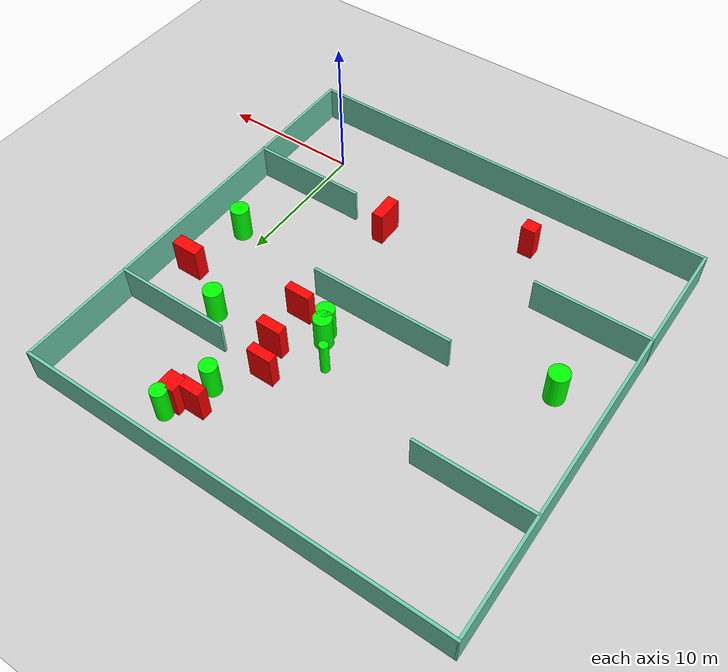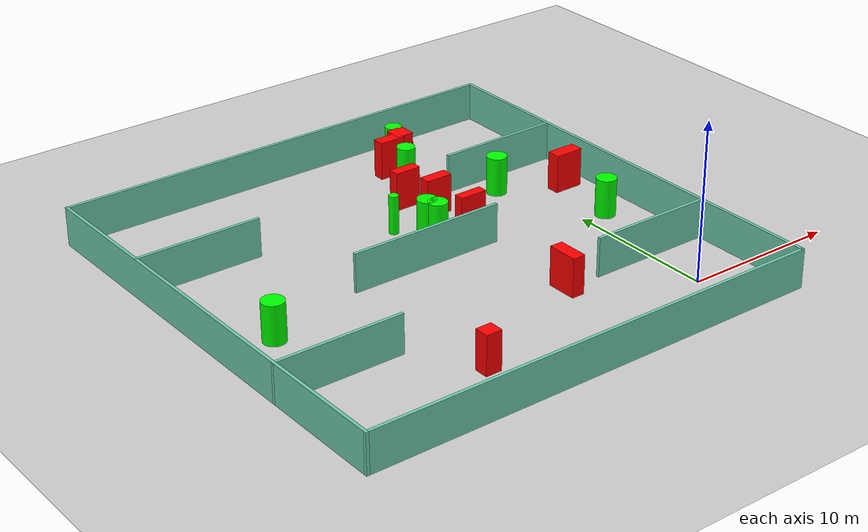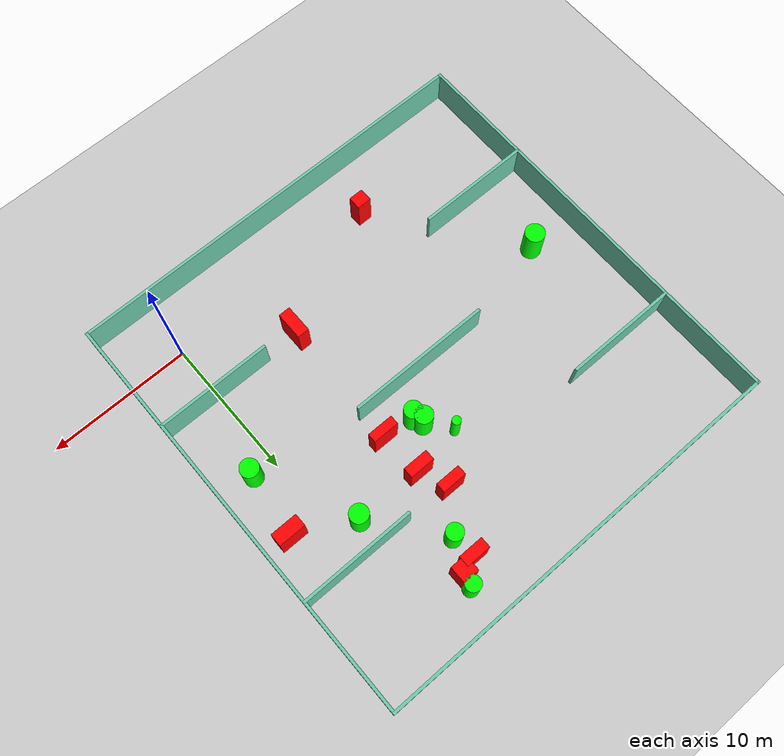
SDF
<sdf version="1.7">
 <world name="default">
  <light name="sun" type="directional">
   <pose>0 0 10 0 -0 0</pose>
   <diffuse>0.8 0.8 0.8 1</diffuse>
   <specular>0.2 0.2 0.2 1</specular>
   <attenuation>
    <range>1000</range>
    <constant>0.9</constant>
    <linear>0.01</linear>
    <quadratic>0.001</quadratic>
   </attenuation>
   <direction>-0.5 0.1 -0.9</direction>
   <spot><inner_angle>0</inner_angle><outer_angle>0</outer_angle><falloff>0</falloff></spot>
  </light>
  <model name="ground_plane">
   <static>1</static>
   <link name="link">
    <collision name="collision">
     <geometry><plane><normal>0 0 1</normal><size>100 100</size></plane></geometry>
     <surface>
      <contact><collide_bitmask>65535</collide_bitmask></contact>
      <friction><ode><mu>100</mu><mu2>50</mu2></ode></friction>
     </surface>
    </collision>
    <visual name="visual">
     <cast_shadows>0</cast_shadows>
     <geometry><plane><normal>0 0 1</normal><size>100 100</size></plane></geometry>
     <material>
      <script><uri>file://media/materials/scripts/gazebo.material</uri><name>Gazebo/Grey</name></script>
     </material>
    </visual>
   </link>
  </model>
  <gravity>0 0 -9.8</gravity>
  <magnetic_field>6e-06 2.3e-05 -4.2e-05</magnetic_field>
  <atmosphere type="adiabatic"/>
  <physics type="ode">
   <max_step_size>0.001</max_step_size>
   <real_time_factor>1</real_time_factor>
   <real_time_update_rate>1000</real_time_update_rate>
  </physics>
  <scene><ambient>0.4 0.4 0.4 1</ambient><background>0.7 0.7 0.7 1</background><shadows>1</shadows></scene>
  <spherical_coordinates>
   <surface_model>EARTH_WGS84</surface_model>
   <latitude_deg>0</latitude_deg>
   <longitude_deg>0</longitude_deg>
   <elevation>0</elevation>
   <heading_deg>0</heading_deg>
  </spherical_coordinates>
  <model name="my_base_walls">
   <link name="Wall_10">
    <collision name="Wall_10_Collision">
     <geometry><box><size>8.2 0.2 2.5</size></box></geometry>
     <pose>0 0 1.25 0 -0 0</pose>
    </collision>
    <visual name="Wall_10_Visual">
     <pose>0 0 1.25 0 -0 0</pose>
     <geometry><box><size>8.2 0.2 2.5</size></box></geometry>
     <material>
      <script><uri>file://media/materials/scripts/gazebo.material</uri><name>Gazebo/Grey</name></script>
      <ambient>0.435294 0.796078 0.67451 1</ambient>
     </material>
     <meta><layer>0</layer></meta>
    </visual>
    <pose>-11 -7 0 0 -0 0</pose>
   </link>
   <link name="Wall_12">
    <collision name="Wall_12_Collision">
     <geometry><box><size>8.2 0.2 2.5</size></box></geometry>
     <pose>0 0 1.25 0 -0 0</pose>
    </collision>
    <visual name="Wall_12_Visual">
     <pose>0 0 1.25 0 -0 0</pose>
     <geometry><box><size>8.2 0.2 2.5</size></box></geometry>
     <material>
      <script><uri>file://media/materials/scripts/gazebo.material</uri><name>Gazebo/Grey</name></script>
      <ambient>0.435294 0.796078 0.67451 1</ambient>
     </material>
     <meta><layer>0</layer></meta>
    </visual>
    <pose>-11 7 0 0 -0 0</pose>
   </link>
   <link name="Wall_14">
    <collision name="Wall_14_Collision">
     <geometry><box><size>8.2 0.2 2.5</size></box></geometry>
     <pose>0 0 1.25 0 -0 0</pose>
    </collision>
    <visual name="Wall_14_Visual">
     <pose>0 0 1.25 0 -0 0</pose>
     <geometry><box><size>8.2 0.2 2.5</size></box></geometry>
     <material>
      <script><uri>file://media/materials/scripts/gazebo.material</uri><name>Gazebo/Grey</name></script>
      <ambient>0.435294 0.796078 0.67451 1</ambient>
     </material>
     <meta><layer>0</layer></meta>
    </visual>
    <pose>11 7 0 0 -0 3.14159</pose>
   </link>
   <link name="Wall_16">
    <collision name="Wall_16_Collision">
     <geometry><box><size>10.2 0.2 2.5</size></box></geometry>
     <pose>0 0 1.25 0 -0 0</pose>
    </collision>
    <visual name="Wall_16_Visual">
     <pose>0 0 1.25 0 -0 0</pose>
     <geometry><box><size>10.2 0.2 2.5</size></box></geometry>
     <material>
      <script><uri>file://media/materials/scripts/gazebo.material</uri><name>Gazebo/Grey</name></script>
      <ambient>0.435294 0.796078 0.67451 1</ambient>
     </material>
     <meta><layer>0</layer></meta>
    </visual>
    <pose>0 0 0 0 -0 3.14159</pose>
   </link>
   <link name="Wall_2">
    <collision name="Wall_2_Collision">
     <geometry><box><size>30.2 0.2 2.5</size></box></geometry>
     <pose>0 0 1.25 0 -0 0</pose>
    </collision>
    <visual name="Wall_2_Visual">
     <pose>0 0 1.25 0 -0 0</pose>
     <geometry><box><size>30.2 0.2 2.5</size></box></geometry>
     <material>
      <script><uri>file://media/materials/scripts/gazebo.material</uri><name>Gazebo/Grey</name></script>
      <ambient>0.435294 0.796078 0.67451 1</ambient>
     </material>
     <meta><layer>0</layer></meta>
    </visual>
    <pose>0 -15 0 0 -0 3.14159</pose>
   </link>
   <link name="Wall_3">
    <collision name="Wall_3_Collision">
     <geometry><box><size>30.2 0.2 2.5</size></box></geometry>
     <pose>0 0 1.25 0 -0 0</pose>
    </collision>
    <visual name="Wall_3_Visual">
     <pose>0 0 1.25 0 -0 0</pose>
     <geometry><box><size>30.2 0.2 2.5</size></box></geometry>
     <material>
      <script><uri>file://media/materials/scripts/gazebo.material</uri><name>Gazebo/Grey</name></script>
      <ambient>0.435294 0.796078 0.67451 1</ambient>
     </material>
     <meta><layer>0</layer></meta>
    </visual>
    <pose>-15 0 0 0 -0 1.5708</pose>
   </link>
   <link name="Wall_4">
    <collision name="Wall_4_Collision">
     <geometry><box><size>30.2 0.2 2.5</size></box></geometry>
     <pose>0 0 1.25 0 -0 0</pose>
    </collision>
    <visual name="Wall_4_Visual">
     <pose>0 0 1.25 0 -0 0</pose>
     <geometry><box><size>30.2 0.2 2.5</size></box></geometry>
     <material>
      <script><uri>file://media/materials/scripts/gazebo.material</uri><name>Gazebo/Grey</name></script>
      <ambient>0.435294 0.796078 0.67451 1</ambient>
     </material>
     <meta><layer>0</layer></meta>
    </visual>
    <pose>0 15 0 0 -0 0</pose>
   </link>
   <link name="Wall_6">
    <collision name="Wall_6_Collision">
     <geometry><box><size>30.2 0.2 2.5</size></box></geometry>
     <pose>0 0 1.25 0 -0 0</pose>
    </collision>
    <visual name="Wall_6_Visual">
     <pose>0 0 1.25 0 -0 0</pose>
     <geometry><box><size>30.2 0.2 2.5</size></box></geometry>
     <material>
      <script><uri>file://media/materials/scripts/gazebo.material</uri><name>Gazebo/Grey</name></script>
      <ambient>0.435294 0.796078 0.67451 1</ambient>
     </material>
     <meta><layer>0</layer></meta>
    </visual>
    <pose>15 0 0 0 -0 1.5708</pose>
   </link>
   <link name="Wall_8">
    <collision name="Wall_8_Collision">
     <geometry><box><size>8.2 0.2 2.5</size></box></geometry>
     <pose>0 0 1.25 0 -0 0</pose>
    </collision>
    <visual name="Wall_8_Visual">
     <pose>0 0 1.25 0 -0 0</pose>
     <geometry><box><size>8.2 0.2 2.5</size></box></geometry>
     <material>
      <script><uri>file://media/materials/scripts/gazebo.material</uri><name>Gazebo/Grey</name></script>
      <ambient>0.435294 0.796078 0.67451 1</ambient>
     </material>
     <meta><layer>0</layer></meta>
    </visual>
    <pose>11 -7 0 0 -0 3.14159</pose>
   </link>
   <static>1</static>
   <pose>-11 11 0 0 -0 0</pose>
  </model>
  <model name="cylinder1">
   <static>1</static>
   <link name="link">
    <inertial>
     <mass>1</mass>
     <inertia><ixx>0.5</ixx><ixy>0</ixy><ixz>0</ixz><iyy>0.5</iyy><iyz>0</iyz><izz>1</izz></inertia>
    </inertial>
    <collision name="collision">
     <geometry><cylinder><radius>0.6489711197368259</radius><length>2.5</length></cylinder></geometry>
    </collision>
    <visual name="visual">
     <geometry><cylinder><radius>0.6489711197368259</radius><length>2.5</length></cylinder></geometry>
     <material>
      <ambient>0 1 0 1</ambient>
      <diffuse>0 1 0 1</diffuse>
      <specular>0.1 0.1 0.1 1</specular>
      <emissive>0 0 0 0</emissive>
     </material>
    </visual>
   </link>
   <pose>-1.7226446613964796 16.098553953733177 1.25 0 0 0</pose>
  </model>
  <model name="cylinder2">
   <static>1</static>
   <link name="link">
    <inertial>
     <mass>1</mass>
     <inertia><ixx>0.5</ixx><ixy>0</ixy><ixz>0</ixz><iyy>0.5</iyy><iyz>0</iyz><izz>1</izz></inertia>
    </inertial>
    <collision name="collision">
     <geometry><cylinder><radius>0.6443500829585339</radius><length>2.5</length></cylinder></geometry>
    </collision>
    <visual name="visual">
     <geometry><cylinder><radius>0.6443500829585339</radius><length>2.5</length></cylinder></geometry>
     <material>
      <ambient>0 1 0 1</ambient>
      <diffuse>0 1 0 1</diffuse>
      <specular>0.1 0.1 0.1 1</specular>
      <emissive>0 0 0 0</emissive>
     </material>
    </visual>
   </link>
   <pose>1.537268805633751 9.623692821245816 1.25 0 0 0</pose>
  </model>
  <model name="cylinder3">
   <static>1</static>
   <link name="link">
    <inertial>
     <mass>1</mass>
     <inertia><ixx>0.5</ixx><ixy>0</ixy><ixz>0</ixz><iyy>0.5</iyy><iyz>0</iyz><izz>1</izz></inertia>
    </inertial>
    <collision name="collision">
     <geometry><cylinder><radius>0.3075815710560919</radius><length>2.5</length></cylinder></geometry>
    </collision>
    <visual name="visual">
     <geometry><cylinder><radius>0.3075815710560919</radius><length>2.5</length></cylinder></geometry>
     <material>
      <ambient>0 1 0 1</ambient>
      <diffuse>0 1 0 1</diffuse>
      <specular>0.1 0.1 0.1 1</specular>
      <emissive>0 0 0 0</emissive>
     </material>
    </visual>
   </link>
   <pose>-10.02440632126258 15.574400446020704 1.25 0 0 0</pose>
  </model>
  <model name="cylinder4">
   <static>1</static>
   <link name="link">
    <inertial>
     <mass>1</mass>
     <inertia><ixx>0.5</ixx><ixy>0</ixy><ixz>0</ixz><iyy>0.5</iyy><iyz>0</iyz><izz>1</izz></inertia>
    </inertial>
    <collision name="collision">
     <geometry><cylinder><radius>0.6222182325849965</radius><length>2.5</length></cylinder></geometry>
    </collision>
    <visual name="visual">
     <geometry><cylinder><radius>0.6222182325849965</radius><length>2.5</length></cylinder></geometry>
     <material>
      <ambient>0 1 0 1</ambient>
      <diffuse>0 1 0 1</diffuse>
      <specular>0.1 0.1 0.1 1</specular>
      <emissive>0 0 0 0</emissive>
     </material>
    </visual>
   </link>
   <pose>-8.45764891836646 13.307279878803563 1.25 0 0 0</pose>
  </model>
  <model name="cylinder5">
   <static>1</static>
   <link name="link">
    <inertial>
     <mass>1</mass>
     <inertia><ixx>0.5</ixx><ixy>0</ixy><ixz>0</ixz><iyy>0.5</iyy><iyz>0</iyz><izz>1</izz></inertia>
    </inertial>
    <collision name="collision">
     <geometry><cylinder><radius>0.539252318627569</radius><length>2.5</length></cylinder></geometry>
    </collision>
    <visual name="visual">
     <geometry><cylinder><radius>0.539252318627569</radius><length>2.5</length></cylinder></geometry>
     <material>
      <ambient>0 1 0 1</ambient>
      <diffuse>0 1 0 1</diffuse>
      <specular>0.1 0.1 0.1 1</specular>
      <emissive>0 0 0 0</emissive>
     </material>
    </visual>
   </link>
   <pose>-4.147498891811232 23.599449363120723 1.25 0 0 0</pose>
  </model>
  <model name="cylinder6">
   <static>1</static>
   <link name="link">
    <inertial>
     <mass>1</mass>
     <inertia><ixx>0.5</ixx><ixy>0</ixy><ixz>0</ixz><iyy>0.5</iyy><iyz>0</iyz><izz>1</izz></inertia>
    </inertial>
    <collision name="collision">
     <geometry><cylinder><radius>0.6305014324277607</radius><length>2.5</length></cylinder></geometry>
    </collision>
    <visual name="visual">
     <geometry><cylinder><radius>0.6305014324277607</radius><length>2.5</length></cylinder></geometry>
     <material>
      <ambient>0 1 0 1</ambient>
      <diffuse>0 1 0 1</diffuse>
      <specular>0.1 0.1 0.1 1</specular>
      <emissive>0 0 0 0</emissive>
     </material>
    </visual>
   </link>
   <pose>-8.739907503843686 13.981914442824994 1.25 0 0 0</pose>
  </model>
  <model name="cylinder7">
   <static>1</static>
   <link name="link">
    <inertial>
     <mass>1</mass>
     <inertia><ixx>0.5</ixx><ixy>0</ixy><ixz>0</ixz><iyy>0.5</iyy><iyz>0</iyz><izz>1</izz></inertia>
    </inertial>
    <collision name="collision">
     <geometry><cylinder><radius>0.6987369580463295</radius><length>2.5</length></cylinder></geometry>
    </collision>
    <visual name="visual">
     <geometry><cylinder><radius>0.6987369580463295</radius><length>2.5</length></cylinder></geometry>
     <material>
      <ambient>0 1 0 1</ambient>
      <diffuse>0 1 0 1</diffuse>
      <specular>0.1 0.1 0.1 1</specular>
      <emissive>0 0 0 0</emissive>
     </material>
    </visual>
   </link>
   <pose>-22.57320714487154 9.347769506946204 1.25 0 0 0</pose>
  </model>
  <model name="cylinder8">
   <static>1</static>
   <link name="link">
    <inertial>
     <mass>1</mass>
     <inertia><ixx>0.5</ixx><ixy>0</ixy><ixz>0</ixz><iyy>0.5</iyy><iyz>0</iyz><izz>1</izz></inertia>
    </inertial>
    <collision name="collision">
     <geometry><cylinder><radius>0.5846515692590317</radius><length>2.5</length></cylinder></geometry>
    </collision>
    <visual name="visual">
     <geometry><cylinder><radius>0.5846515692590317</radius><length>2.5</length></cylinder></geometry>
     <material>
      <ambient>0 1 0 1</ambient>
      <diffuse>0 1 0 1</diffuse>
      <specular>0.1 0.1 0.1 1</specular>
      <emissive>0 0 0 0</emissive>
     </material>
    </visual>
   </link>
   <pose>-5.35110259764998 20.644226272435205 1.25 0 0 0</pose>
  </model>
  <model name="box1">
   <static>1</static>
   <link name="link">
    <inertial>
     <mass>1</mass>
     <inertia><ixx>0.083</ixx><ixy>0</ixy><ixz>0</ixz><iyy>0.083</iyy><iyz>0</iyz><izz>0.083</izz></inertia>
    </inertial>
    <collision name="collision">
     <geometry><box><size>1.1608351382249409 1.1963488331527472 2.5</size></box></geometry>
    </collision>
    <visual name="visual">
     <geometry><box><size>1.1608351382249409 1.1963488331527472 2.5</size></box></geometry>
     <material>
      <ambient>1 0 0 1</ambient>
      <diffuse>1 0 0 1</diffuse>
      <specular>0.1 0.1 0.1 1</specular>
      <emissive>0 0 0 0</emissive>
     </material>
    </visual>
    <sensor name="my_contact" type="contact">
     <contact><collision>box_collision</collision><topic>__default_topic__</topic></contact>
    </sensor>
   </link>
   <pose>-4.342909551863681 22.642276802483167 1.25 0 0 0</pose>
  </model>
  <model name="box2">
   <static>1</static>
   <link name="link">
    <inertial>
     <mass>1</mass>
     <inertia><ixx>0.083</ixx><ixy>0</ixy><ixz>0</ixz><iyy>0.083</iyy><iyz>0</iyz><izz>0.083</izz></inertia>
    </inertial>
    <collision name="collision">
     <geometry><box><size>1.82949731080783 0.6353433553511655 2.5</size></box></geometry>
    </collision>
    <visual name="visual">
     <geometry><box><size>1.82949731080783 0.6353433553511655 2.5</size></box></geometry>
     <material>
      <ambient>1 0 0 1</ambient>
      <diffuse>1 0 0 1</diffuse>
      <specular>0.1 0.1 0.1 1</specular>
      <emissive>0 0 0 0</emissive>
     </material>
    </visual>
    <sensor name="my_contact" type="contact">
     <contact><collision>box_collision</collision><topic>__default_topic__</topic></contact>
    </sensor>
   </link>
   <pose>-6.2215027403506475 13.04157405124472 1.25 0 0 0</pose>
  </model>
  <model name="box3">
   <static>1</static>
   <link name="link">
    <inertial>
     <mass>1</mass>
     <inertia><ixx>0.083</ixx><ixy>0</ixy><ixz>0</ixz><iyy>0.083</iyy><iyz>0</iyz><izz>0.083</izz></inertia>
    </inertial>
    <collision name="collision">
     <geometry><box><size>1.0322281556280164 0.9356223155976534 2.5</size></box></geometry>
    </collision>
    <visual name="visual">
     <geometry><box><size>1.0322281556280164 0.9356223155976534 2.5</size></box></geometry>
     <material>
      <ambient>1 0 0 1</ambient>
      <diffuse>1 0 0 1</diffuse>
      <specular>0.1 0.1 0.1 1</specular>
      <emissive>0 0 0 0</emissive>
     </material>
    </visual>
    <sensor name="my_contact" type="contact">
     <contact><collision>box_collision</collision><topic>__default_topic__</topic></contact>
    </sensor>
   </link>
   <pose>-15.419777881080662 -0.12767806184987585 1.25 0 0 0</pose>
  </model>
  <model name="box4">
   <static>1</static>
   <link name="link">
    <inertial>
     <mass>1</mass>
     <inertia><ixx>0.083</ixx><ixy>0</ixy><ixz>0</ixz><iyy>0.083</iyy><iyz>0</iyz><izz>0.083</izz></inertia>
    </inertial>
    <collision name="collision">
     <geometry><box><size>1.757640170285743 0.7690283903098669 2.5</size></box></geometry>
    </collision>
    <visual name="visual">
     <geometry><box><size>1.757640170285743 0.7690283903098669 2.5</size></box></geometry>
     <material>
      <ambient>1 0 0 1</ambient>
      <diffuse>1 0 0 1</diffuse>
      <specular>0.1 0.1 0.1 1</specular>
      <emissive>0 0 0 0</emissive>
     </material>
    </visual>
    <sensor name="my_contact" type="contact">
     <contact><collision>box_collision</collision><topic>__default_topic__</topic></contact>
    </sensor>
   </link>
   <pose>-5.442480077931217 22.28591101146608 1.25 0 0 0</pose>
  </model>
  <model name="box5">
   <static>1</static>
   <link name="link">
    <inertial>
     <mass>1</mass>
     <inertia><ixx>0.083</ixx><ixy>0</ixy><ixz>0</ixz><iyy>0.083</iyy><iyz>0</iyz><izz>0.083</izz></inertia>
    </inertial>
    <collision name="collision">
     <geometry><box><size>1.7414705899364114 0.6946689074897312 2.5</size></box></geometry>
    </collision>
    <visual name="visual">
     <geometry><box><size>1.7414705899364114 0.6946689074897312 2.5</size></box></geometry>
     <material>
      <ambient>1 0 0 1</ambient>
      <diffuse>1 0 0 1</diffuse>
      <specular>0.1 0.1 0.1 1</specular>
      <emissive>0 0 0 0</emissive>
     </material>
    </visual>
    <sensor name="my_contact" type="contact">
     <contact><collision>box_collision</collision><topic>__default_topic__</topic></contact>
    </sensor>
   </link>
   <pose>-7.316517984494293 18.108107781666945 1.25 0 0 0</pose>
  </model>
  <model name="box6">
   <static>1</static>
   <link name="link">
    <inertial>
     <mass>1</mass>
     <inertia><ixx>0.083</ixx><ixy>0</ixy><ixz>0</ixz><iyy>0.083</iyy><iyz>0</iyz><izz>0.083</izz></inertia>
    </inertial>
    <collision name="collision">
     <geometry><box><size>0.8341428923282926 1.9820247186344817 2.5</size></box></geometry>
    </collision>
    <visual name="visual">
     <geometry><box><size>0.8341428923282926 1.9820247186344817 2.5</size></box></geometry>
     <material>
      <ambient>1 0 0 1</ambient>
      <diffuse>1 0 0 1</diffuse>
      <specular>0.1 0.1 0.1 1</specular>
      <emissive>0 0 0 0</emissive>
     </material>
    </visual>
    <sensor name="my_contact" type="contact">
     <contact><collision>box_collision</collision><topic>__default_topic__</topic></contact>
    </sensor>
   </link>
   <pose>-6.479930522266427 3.9436551545716227 1.25 0 0 0</pose>
  </model>
  <model name="box7">
   <static>1</static>
   <link name="link">
    <inertial>
     <mass>1</mass>
     <inertia><ixx>0.083</ixx><ixy>0</ixy><ixz>0</ixz><iyy>0.083</iyy><iyz>0</iyz><izz>0.083</izz></inertia>
    </inertial>
    <collision name="collision">
     <geometry><box><size>1.9067410919877514 0.8878850283408426 2.5</size></box></geometry>
    </collision>
    <visual name="visual">
     <geometry><box><size>1.9067410919877514 0.8878850283408426 2.5</size></box></geometry>
     <material>
      <ambient>1 0 0 1</ambient>
      <diffuse>1 0 0 1</diffuse>
      <specular>0.1 0.1 0.1 1</specular>
      <emissive>0 0 0 0</emissive>
     </material>
    </visual>
    <sensor name="my_contact" type="contact">
     <contact><collision>box_collision</collision><topic>__default_topic__</topic></contact>
    </sensor>
   </link>
   <pose>2.1074698834485837 14.10307261209342 1.25 0 0 0</pose>
  </model>
  <model name="box8">
   <static>1</static>
   <link name="link">
    <inertial>
     <mass>1</mass>
     <inertia><ixx>0.083</ixx><ixy>0</ixy><ixz>0</ixz><iyy>0.083</iyy><iyz>0</iyz><izz>0.083</izz></inertia>
    </inertial>
    <collision name="collision">
     <geometry><box><size>1.7767796300160879 0.7271827059378597 2.5</size></box></geometry>
    </collision>
    <visual name="visual">
     <geometry><box><size>1.7767796300160879 0.7271827059378597 2.5</size></box></geometry>
     <material>
      <ambient>1 0 0 1</ambient>
      <diffuse>1 0 0 1</diffuse>
      <specular>0.1 0.1 0.1 1</specular>
      <emissive>0 0 0 0</emissive>
     </material>
    </visual>
    <sensor name="my_contact" type="contact">
     <contact><collision>box_collision</collision><topic>__default_topic__</topic></contact>
    </sensor>
   </link>
   <pose>-6.448657350078943 16.130953759720246 1.25 0 0 0</pose>
  </model>
 </world>
</sdf>
